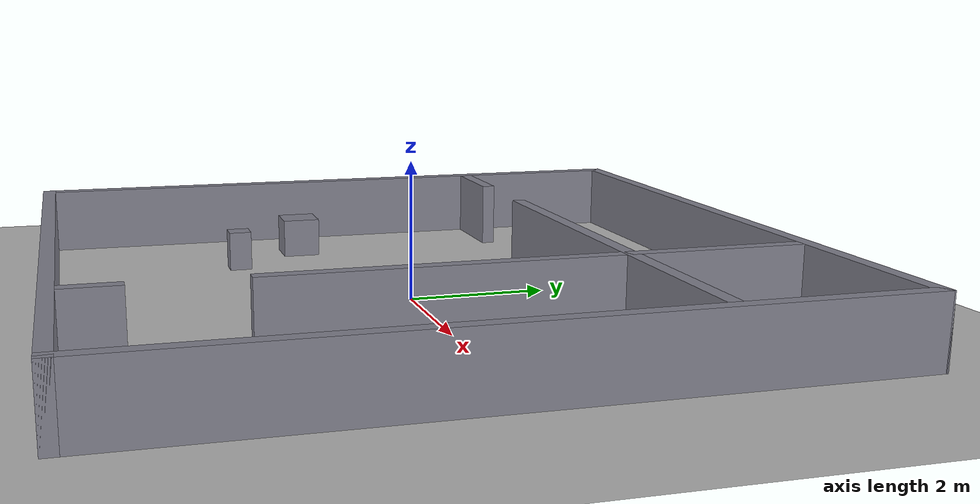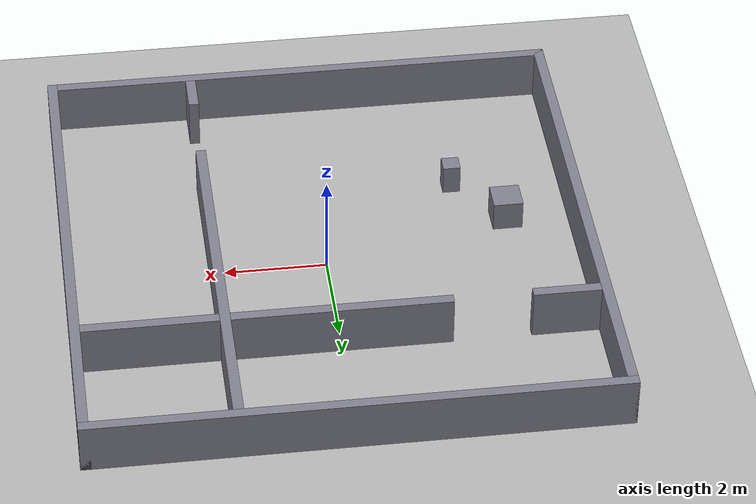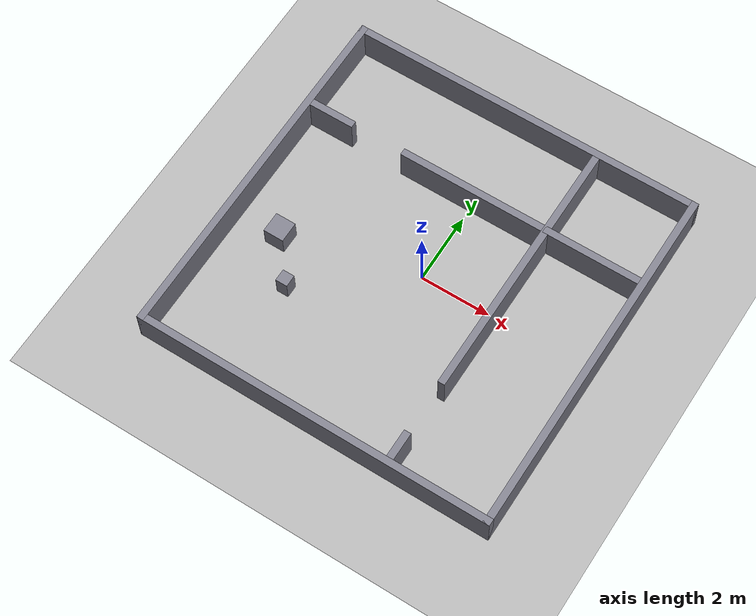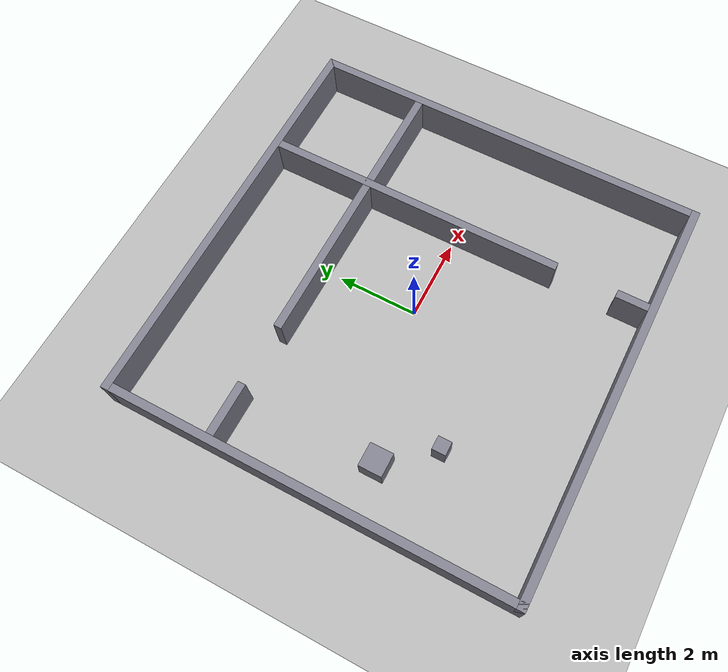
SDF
<?xml version="1.0"?>
<sdf version="1.10">
  <world name="scenario_9">
    <physics name="fast" type="ignored">
      <max_step_size>0.005</max_step_size>
      <real_time_factor>1.0</real_time_factor>
      <real_time_update_rate>200</real_time_update_rate>
    </physics>
    <plugin filename="gz-sim-physics-system" name="gz::sim::systems::Physics"/>
    <plugin filename="gz-sim-user-commands-system" name="gz::sim::systems::UserCommands"/>
    <plugin filename="gz-sim-scene-broadcaster-system" name="gz::sim::systems::SceneBroadcaster"/>
    <plugin filename="gz-sim-sensors-system" name="gz::sim::systems::Sensors">
      <render_engine>ogre2</render_engine>
    </plugin>
    <light type="directional" name="sun">
      <cast_shadows>false</cast_shadows>
      <pose>0 0 10 0 0 0</pose>
      <diffuse>0.9 0.9 0.9 1</diffuse>
      <direction>-0.5 0.2 -0.9</direction>
    </light>
    <model name="ground_plane">
      <static>true</static>
      <link name="link">
        <collision name="c"><geometry><plane><normal>0 0 1</normal><size>20 20</size></plane></geometry></collision>
        <visual name="v"><geometry><plane><normal>0 0 1</normal><size>20 20</size></plane></geometry>
          <material><ambient>0.7 0.7 0.7 1</ambient><diffuse>0.7 0.7 0.7 1</diffuse></material></visual>
      </link>
    </model>
    <model name="box_0">
      <static>true</static>
      <pose>0.0 5.0 0.5 0 0 0</pose>
      <link name="link">
        <collision name="c"><geometry><box><size>10.2 0.2 1.0</size></box></geometry></collision>
        <visual name="v"><geometry><box><size>10.2 0.2 1.0</size></box></geometry>
          <material><ambient>0.5 0.5 0.55 1</ambient><diffuse>0.5 0.5 0.55 1</diffuse></material></visual>
      </link>
    </model>
    <model name="box_1">
      <static>true</static>
      <pose>0.0 -5.0 0.5 0 0 0</pose>
      <link name="link">
        <collision name="c"><geometry><box><size>10.2 0.2 1.0</size></box></geometry></collision>
        <visual name="v"><geometry><box><size>10.2 0.2 1.0</size></box></geometry>
          <material><ambient>0.5 0.5 0.55 1</ambient><diffuse>0.5 0.5 0.55 1</diffuse></material></visual>
      </link>
    </model>
    <model name="box_2">
      <static>true</static>
      <pose>5.0 0.0 0.5 0 0 0</pose>
      <link name="link">
        <collision name="c"><geometry><box><size>0.2 10.2 1.0</size></box></geometry></collision>
        <visual name="v"><geometry><box><size>0.2 10.2 1.0</size></box></geometry>
          <material><ambient>0.5 0.5 0.55 1</ambient><diffuse>0.5 0.5 0.55 1</diffuse></material></visual>
      </link>
    </model>
    <model name="box_3">
      <static>true</static>
      <pose>-5.0 0.0 0.5 0 0 0</pose>
      <link name="link">
        <collision name="c"><geometry><box><size>0.2 10.2 1.0</size></box></geometry></collision>
        <visual name="v"><geometry><box><size>0.2 10.2 1.0</size></box></geometry>
          <material><ambient>0.5 0.5 0.55 1</ambient><diffuse>0.5 0.5 0.55 1</diffuse></material></visual>
      </link>
    </model>
    <model name="box_4">
      <static>true</static>
      <pose>2.2 -4.503120816124181 0.5 0 0 0</pose>
      <link name="link">
        <collision name="c"><geometry><box><size>0.2 0.7937583677516384 1.0</size></box></geometry></collision>
        <visual name="v"><geometry><box><size>0.2 0.7937583677516384 1.0</size></box></geometry>
          <material><ambient>0.5 0.5 0.55 1</ambient><diffuse>0.5 0.5 0.55 1</diffuse></material></visual>
      </link>
    </model>
    <model name="box_5">
      <static>true</static>
      <pose>2.2 1.1468791838758192 0.5 0 0 0</pose>
      <link name="link">
        <collision name="c"><geometry><box><size>0.2 7.506241632248362 1.0</size></box></geometry></collision>
        <visual name="v"><geometry><box><size>0.2 7.506241632248362 1.0</size></box></geometry>
          <material><ambient>0.5 0.5 0.55 1</ambient><diffuse>0.5 0.5 0.55 1</diffuse></material></visual>
      </link>
    </model>
    <model name="box_6">
      <static>true</static>
      <pose>-4.250230199577797 2.39 0.5 0 0 0</pose>
      <link name="link">
        <collision name="c"><geometry><box><size>1.299539600844407 0.2 1.0</size></box></geometry></collision>
        <visual name="v"><geometry><box><size>1.299539600844407 0.2 1.0</size></box></geometry>
          <material><ambient>0.5 0.5 0.55 1</ambient><diffuse>0.5 0.5 0.55 1</diffuse></material></visual>
      </link>
    </model>
    <model name="box_7">
      <static>true</static>
      <pose>1.3997698004222034 2.39 0.5 0 0 0</pose>
      <link name="link">
        <collision name="c"><geometry><box><size>7.000460399155594 0.2 1.0</size></box></geometry></collision>
        <visual name="v"><geometry><box><size>7.000460399155594 0.2 1.0</size></box></geometry>
          <material><ambient>0.5 0.5 0.55 1</ambient><diffuse>0.5 0.5 0.55 1</diffuse></material></visual>
      </link>
    </model>
    <model name="box_8">
      <static>true</static>
      <pose>-3.67 -0.97 0.3 0 0 0</pose>
      <link name="link">
        <collision name="c"><geometry><box><size>0.58 0.58 0.6</size></box></geometry></collision>
        <visual name="v"><geometry><box><size>0.58 0.58 0.6</size></box></geometry>
          <material><ambient>0.5 0.5 0.55 1</ambient><diffuse>0.5 0.5 0.55 1</diffuse></material></visual>
      </link>
    </model>
    <model name="box_9">
      <static>true</static>
      <pose>-2.74 -2.1 0.3 0 0 0</pose>
      <link name="link">
        <collision name="c"><geometry><box><size>0.34 0.34 0.6</size></box></geometry></collision>
        <visual name="v"><geometry><box><size>0.34 0.34 0.6</size></box></geometry>
          <material><ambient>0.5 0.5 0.55 1</ambient><diffuse>0.5 0.5 0.55 1</diffuse></material></visual>
      </link>
    </model>
  </world>
</sdf>
